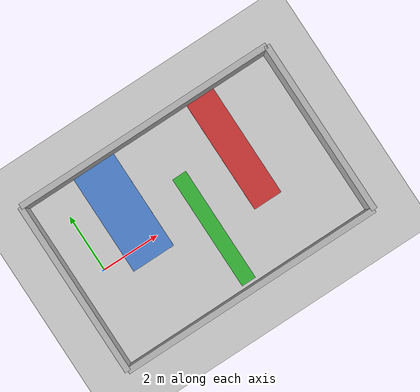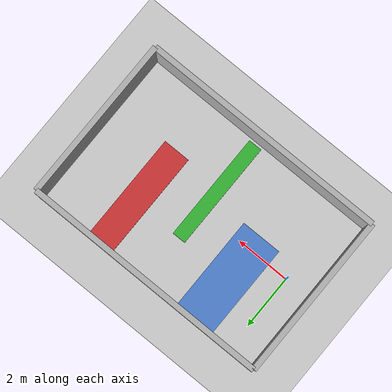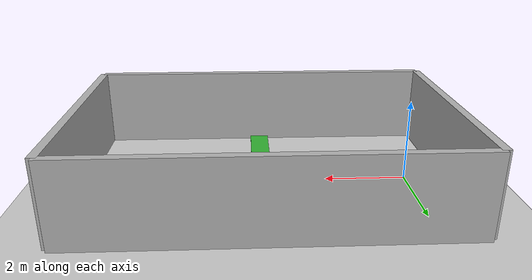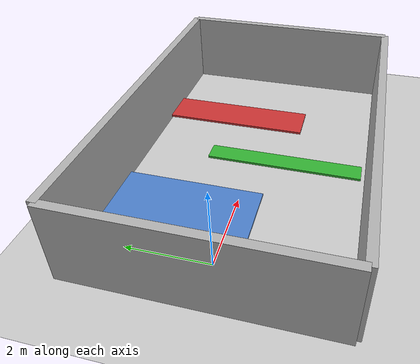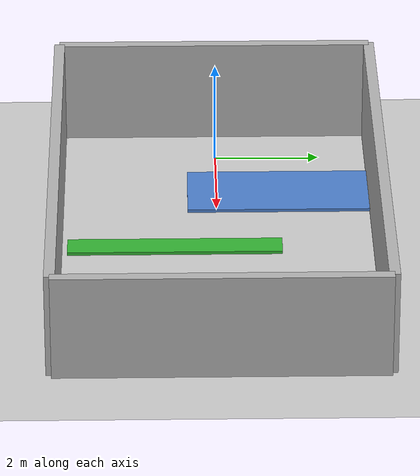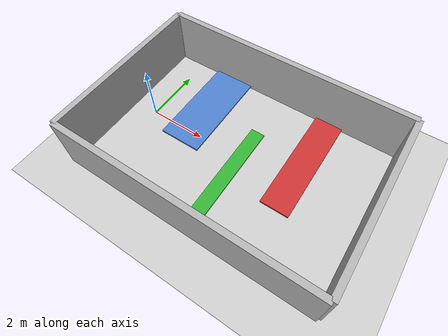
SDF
<sdf version="1.6">
 <world name="default">
  <plugin filename="gz-sim-physics-system" name="gz::sim::systems::Physics"/>
  <plugin filename="gz-sim-user-commands-system" name="gz::sim::systems::UserCommands"/>
  <plugin filename="gz-sim-scene-broadcaster-system" name="gz::sim::systems::SceneBroadcaster"/>
  <plugin filename="gz-sim-sensors-system" name="gz::sim::systems::Sensors">
   <render_engine>ogre2</render_engine>
  </plugin>
  <plugin filename="gz-sim-imu-system" name="gz::sim::systems::Imu"/>
  <include><uri>https://fuel.gazebosim.org/1.0/OpenRobotics/models/Ground Plane</uri></include>
  <include><uri>https://fuel.gazebosim.org/1.0/OpenRobotics/models/Sun</uri></include>
  <scene><shadows>false</shadows></scene>
  <physics type="ode">
   <real_time_update_rate>1000.0</real_time_update_rate>
   <max_step_size>0.001</max_step_size>
   <real_time_factor>1</real_time_factor>
   <ode>
    <solver>
     <type>quick</type>
     <iters>150</iters>
     <precon_iters>0</precon_iters>
     <sor>1.400000</sor>
     <use_dynamic_moi_rescaling>1</use_dynamic_moi_rescaling>
    </solver>
    <constraints>
     <cfm>0.00001</cfm>
     <erp>0.2</erp>
     <contact_max_correcting_vel>2000.000000</contact_max_correcting_vel>
     <contact_surface_layer>0.01000</contact_surface_layer>
    </constraints>
   </ode>
  </physics>
  <model name="box_blue">
   <static>true</static>
   <pose>1.5 1.2 0.08 0 0 0</pose>
   <link name="link">
    <collision name="collision"><geometry><box><size>1.5 3.5 0.06</size></box></geometry></collision>
    <visual name="visual">
     <geometry><box><size>1.5 3.5 0.06</size></box></geometry>
     <material><ambient>0.3 0.5 0.8 1</ambient><diffuse>0.3 0.5 0.8 1</diffuse></material>
    </visual>
   </link>
  </model>
  <model name="box_green">
   <static>true</static>
   <pose>3.6 -0.8 0.08 0 0 0</pose>
   <link name="link">
    <collision name="collision"><geometry><box><size>0.5 4.0 0.06</size></box></geometry></collision>
    <visual name="visual">
     <geometry><box><size>0.5 4.0 0.06</size></box></geometry>
     <material><ambient>0.2 0.7 0.2 1</ambient><diffuse>0.2 0.7 0.2 1</diffuse></material>
    </visual>
   </link>
  </model>
  <model name="box_red">
   <static>true</static>
   <pose>5.5 1.0 0.08 0 0 0</pose>
   <link name="link">
    <collision name="collision"><geometry><box><size>1.0 4.0 0.06</size></box></geometry></collision>
    <visual name="visual">
     <geometry><box><size>1.0 4.0 0.06</size></box></geometry>
     <material><ambient>0.8 0.2 0.2 1</ambient><diffuse>0.8 0.2 0.2 1</diffuse></material>
    </visual>
   </link>
  </model>
  <model name="wall_back_robot">
   <static>true</static>
   <pose>-1.0 0 1.0 0 0 0</pose>
   <link name="link">
    <collision name="collision"><geometry><box><size>0.2 6.0 2.0</size></box></geometry></collision>
    <visual name="visual">
     <geometry><box><size>0.2 6.0 2.0</size></box></geometry>
     <material><ambient>0.7 0.7 0.7 1</ambient><diffuse>0.7 0.7 0.7 1</diffuse></material>
    </visual>
   </link>
  </model>
  <model name="wall_back_anna">
   <static>true</static>
   <pose>8.0 0 1.0 0 0 0</pose>
   <link name="link">
    <collision name="collision"><geometry><box><size>0.2 6.0 2.0</size></box></geometry></collision>
    <visual name="visual">
     <geometry><box><size>0.2 6.0 2.0</size></box></geometry>
     <material><ambient>0.7 0.7 0.7 1</ambient><diffuse>0.7 0.7 0.7 1</diffuse></material>
    </visual>
   </link>
  </model>
  <model name="wall_left">
   <static>true</static>
   <pose>3.5 3.0 1.0 0 0 0</pose>
   <link name="link">
    <collision name="collision"><geometry><box><size>9.0 0.2 2.0</size></box></geometry></collision>
    <visual name="visual">
     <geometry><box><size>9.0 0.2 2.0</size></box></geometry>
     <material><ambient>0.7 0.7 0.7 1</ambient><diffuse>0.7 0.7 0.7 1</diffuse></material>
    </visual>
   </link>
  </model>
  <model name="wall_right">
   <static>true</static>
   <pose>3.5 -3.0 1.0 0 0 0</pose>
   <link name="link">
    <collision name="collision"><geometry><box><size>9.0 0.2 2.0</size></box></geometry></collision>
    <visual name="visual">
     <geometry><box><size>9.0 0.2 2.0</size></box></geometry>
     <material><ambient>0.7 0.7 0.7 1</ambient><diffuse>0.7 0.7 0.7 1</diffuse></material>
    </visual>
   </link>
  </model>
 </world>
</sdf>
